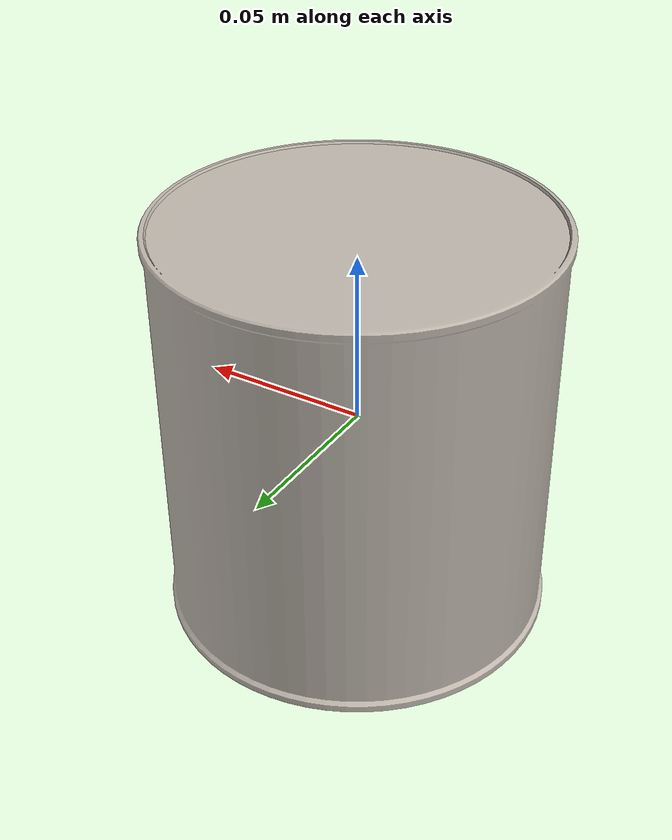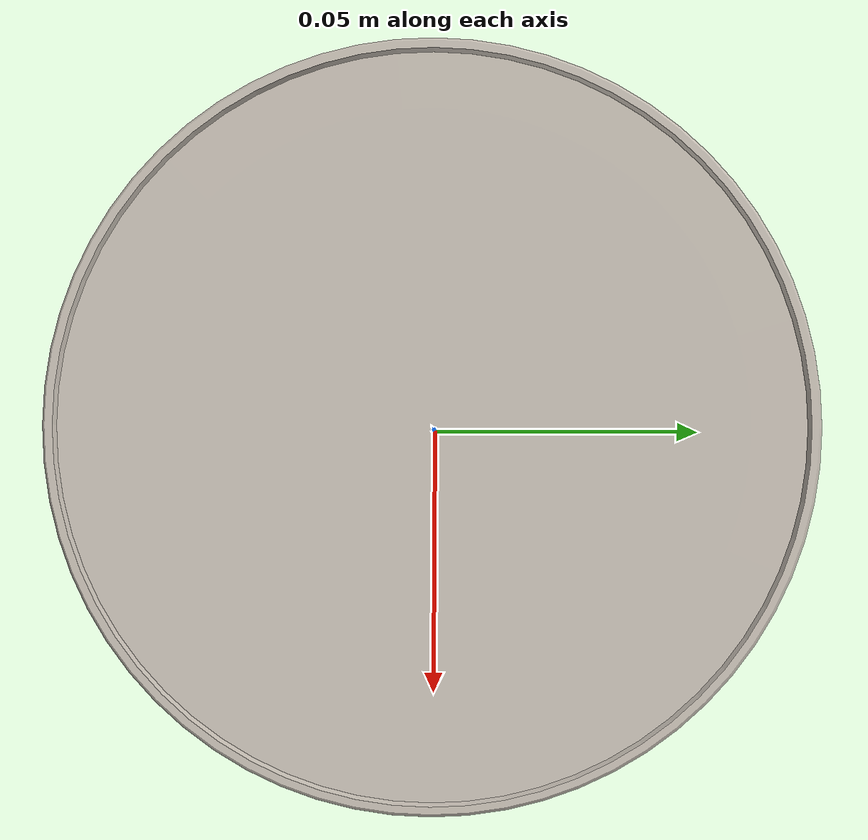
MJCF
<mujoco model="robocasa-boxed-food-0">
  <asset>
    <mesh file="meshes/robocasa_selected/cookie_box_0/model_normalized_0.obj"
          name="cookie_box_mesh" scale="0.12 0.12 0.12" refquat="0.7071067812 0 0 0.7071067812"/>
    <texture file="meshes/robocasa_selected/cookie_box_0/image0.png" name="cookie_box_texture" type="2d"/>
    <material name="cookie_box_material" texture="cookie_box_texture" specular="0.5" shininess="1"/>
  </asset>
  <worldbody>
    <body>
      <body name="object">
        <geom name="cookie_box_collision" type="box" size="0.0227 0.06 0.0362" group="0" rgba="0 0 0 0"/>
        <geom name="cookie_box_visual" type="mesh" mesh="cookie_box_mesh" material="cookie_box_material"
              contype="0" conaffinity="0" group="1" mass="0.0001"/>
      </body>
      <site rgba="0 0 0 0" size="0.005" pos="0 0 -0.0362" name="bottom_site"/>
      <site rgba="0 0 0 0" size="0.005" pos="0 0 0.0362" name="top_site"/>
      <site rgba="0 0 0 0" size="0.005" pos="0.0227 0.06 0" name="horizontal_radius_site"/>
    </body>
  </worldbody>
</mujoco>
